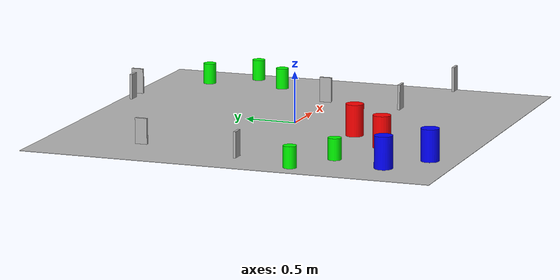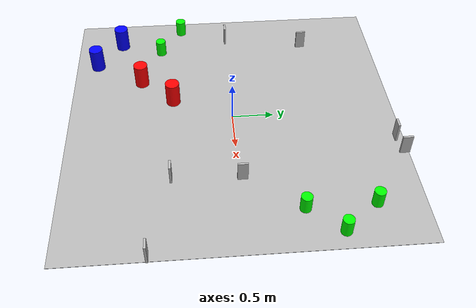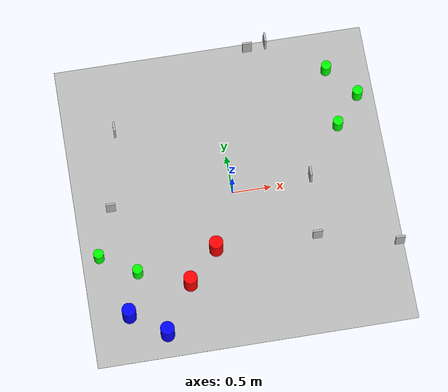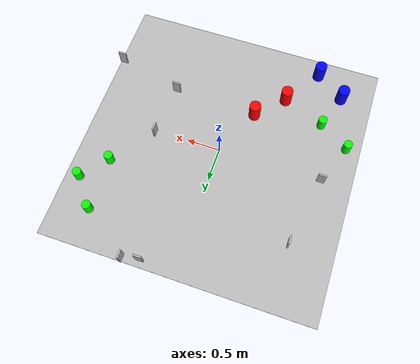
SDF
<sdf version="1.7">
 <world name="default">
  <model name="course">
   <static>1</static>
   <link name="course_link">
    <collision name="course_collision">
     <geometry><plane><normal>0 0 1</normal><size>4 4</size></plane></geometry>
     <surface><friction><ode><mu>100</mu><mu2>50</mu2></ode></friction></surface>
    </collision>
    <visual name="course_visual">
     <cast_shadows>0</cast_shadows>
     <geometry><plane><normal>0 0 1</normal><size>4 4</size></plane></geometry>
     <material>
      <script>
       <uri>model://course/materials/scripts</uri>
       <uri>model://course/materials/textures</uri>
       <name>course</name>
      </script>
     </material>
    </visual>
   </link>
   <pose>0 0 0 0 0 -3.14</pose>
  </model>
  <model name="traffic_parking">
   <static>1</static>
   <link name="box">
    <collision name="collision"><geometry><box><size>0.12 0.025 0.25</size></box></geometry></collision>
    <visual name="visual">
     <geometry><box><size>0.12 0.025 0.25</size></box></geometry>
     <material>
      <script>
       <uri>model://traffic_parking/materials/scripts</uri>
       <uri>model://traffic_parking/materials/textures</uri>
       <name>traffic_parking</name>
      </script>
     </material>
    </visual>
   </link>
   <pose>0.74 1.95 0.13 0 0 -1.57</pose>
  </model>
  <model name="traffic_tunnel">
   <pose>-1.544 0.006774 0.125 1e-06 -1e-06 0.000152</pose>
   <link name="box">
    <collision name="collision"><geometry><box><size>0.12 0.025 0.25</size></box></geometry></collision>
    <visual name="visual">
     <geometry><box><size>0.12 0.025 0.25</size></box></geometry>
     <material>
      <script>
       <uri>model://traffic_tunnel/materials/scripts</uri>
       <uri>model://traffic_tunnel/materials/textures</uri>
       <name>traffic_tunnel</name>
      </script>
     </material>
    </visual>
    <inertial>
     <inertia><ixx>1</ixx><ixy>0</ixy><ixz>0</ixz><iyy>1</iyy><iyz>0</iyz><izz>1</izz></inertia>
     <mass>1</mass>
    </inertial>
   </link>
  </model>
  <model name="traffic_stop">
   <static>1</static>
   <link name="box">
    <collision name="collision"><geometry><box><size>0.12 0.025 0.25</size></box></geometry></collision>
    <visual name="visual">
     <geometry><box><size>0.12 0.025 0.25</size></box></geometry>
     <material>
      <script>
       <uri>model://traffic_stop/materials/scripts</uri>
       <uri>model://traffic_stop/materials/textures</uri>
       <name>traffic_stop</name>
      </script>
     </material>
    </visual>
   </link>
   <pose>-1.35 1.04 0.125 0 0 -1.57</pose>
  </model>
  <model name="traffic_pl_left">
   <static>1</static>
   <link name="box">
    <collision name="collision"><geometry><box><size>0.12 0.025 0.25</size></box></geometry></collision>
    <visual name="visual">
     <geometry><box><size>0.12 0.025 0.25</size></box></geometry>
     <material>
      <script>
       <uri>model://traffic_pl_left/materials/scripts</uri>
       <uri>model://traffic_pl_left/materials/textures</uri>
       <name>traffic_pl_left</name>
      </script>
     </material>
    </visual>
   </link>
   <pose>0.5 1.9 0.13 0 -0 0</pose>
  </model>
  <model name="traffic_construction">
   <static>1</static>
   <link name="box">
    <collision name="collision"><geometry><box><size>0.12 0.025 0.25</size></box></geometry></collision>
    <visual name="visual">
     <geometry><box><size>0.12 0.025 0.25</size></box></geometry>
     <material>
      <script>
       <uri>model://traffic_construction/materials/scripts</uri>
       <uri>model://traffic_construction/materials/textures</uri>
       <name>traffic_construction</name>
      </script>
     </material>
    </visual>
   </link>
   <pose>1 0.04 0.125 0 0 -1.57</pose>
  </model>
  <model name="traffic_intersection">
   <static>1</static>
   <link name="box">
    <collision name="collision"><geometry><box><size>0.12 0.025 0.25</size></box></geometry></collision>
    <visual name="visual">
     <geometry><box><size>0.12 0.025 0.25</size></box></geometry>
     <material>
      <script>
       <uri>model://traffic_intersection/materials/scripts</uri>
       <uri>model://traffic_intersection/materials/textures</uri>
       <name>traffic_intersection</name>
      </script>
     </material>
    </visual>
   </link>
   <pose>1.95 -1 0.125 0 -0 0</pose>
  </model>
  <model name="traffic_noentry">
   <static>1</static>
   <link name="box">
    <collision name="collision"><geometry><box><size>0.12 0.025 0.25</size></box></geometry></collision>
    <visual name="visual">
     <geometry><box><size>0.12 0.025 0.25</size></box></geometry>
     <material>
      <script>
       <uri>model://traffic_noentry/materials/scripts</uri>
       <uri>model://traffic_noentry/materials/textures</uri>
       <name>traffic_noentry</name>
      </script>
     </material>
    </visual>
   </link>
   <pose>0.95 -0.758 0.125 0 -0 0</pose>
  </model>
  <model name="bouteille">
   <link name="link">
    <inertial>
     <mass>1</mass>
     <inertia><ixx>0.145833</ixx><ixy>0</ixy><ixz>0</ixz><iyy>0.145833</iyy><iyz>0</iyz><izz>0.125</izz></inertia>
    </inertial>
    <visual name="visual">
     <geometry><cylinder><radius>0.087</radius><length>0.31</length></cylinder></geometry>
     <material>
      <script><name>Gazebo/Grey</name><uri>file://media/materials/scripts/gazebo.material</uri></script>
      <shader type="pixel"><normal_map>__default__</normal_map></shader>
      <ambient>0 0 1 1</ambient>
      <diffuse>0 0 1 1</diffuse>
      <specular>0 0 0.9 1</specular>
      <emissive>0 0 0 1</emissive>
     </material>
    </visual>
    <collision name="collision">
     <geometry><cylinder><radius>0.087</radius><length>0.31</length></cylinder></geometry>
     <surface>
      <friction>
       <ode><mu>1</mu><mu2>1</mu2><fdir1>0 0 0</fdir1><slip1>0</slip1><slip2>0</slip2></ode>
       <torsional>
        <coefficient>1</coefficient>
        <patch_radius>0</patch_radius>
        <surface_radius>0</surface_radius>
        <use_patch_radius>1</use_patch_radius>
        <ode><slip>0</slip></ode>
       </torsional>
      </friction>
      <bounce><restitution_coefficient>0</restitution_coefficient><threshold>1e+06</threshold></bounce>
      <contact>
       <collide_without_contact>0</collide_without_contact>
       <collide_without_contact_bitmask>1</collide_without_contact_bitmask>
       <collide_bitmask>1</collide_bitmask>
       <ode>
        <soft_cfm>0</soft_cfm>
        <soft_erp>0.2</soft_erp>
        <kp>1e+13</kp>
        <kd>1</kd>
        <max_vel>0.01</max_vel>
        <min_depth>0</min_depth>
       </ode>
       <bullet>
        <split_impulse>1</split_impulse>
        <split_impulse_penetration_threshold>-0.01</split_impulse_penetration_threshold>
        <soft_cfm>0</soft_cfm>
        <soft_erp>0.2</soft_erp>
        <kp>1e+13</kp>
        <kd>1</kd>
       </bullet>
      </contact>
     </surface>
    </collision>
   </link>
   <static>0</static>
   <pose>-1.51691 -1.41262 0.154991 0 -0 7.4e-05</pose>
  </model>
  <model name="bouteille_clone">
   <link name="link">
    <inertial>
     <mass>1</mass>
     <inertia><ixx>0.145833</ixx><ixy>0</ixy><ixz>0</ixz><iyy>0.145833</iyy><iyz>0</iyz><izz>0.125</izz></inertia>
    </inertial>
    <visual name="visual">
     <geometry><cylinder><radius>0.087</radius><length>0.31</length></cylinder></geometry>
     <material>
      <script><name>Gazebo/Grey</name><uri>file://media/materials/scripts/gazebo.material</uri></script>
      <shader type="pixel"><normal_map>__default__</normal_map></shader>
      <ambient>0 0 1 1</ambient>
      <diffuse>0 0 1 1</diffuse>
      <specular>0 0 0.9 1</specular>
      <emissive>0 0 0 1</emissive>
     </material>
    </visual>
    <collision name="collision">
     <geometry><cylinder><radius>0.087</radius><length>0.31</length></cylinder></geometry>
     <surface>
      <friction>
       <ode><mu>1</mu><mu2>1</mu2><fdir1>0 0 0</fdir1><slip1>0</slip1><slip2>0</slip2></ode>
       <torsional>
        <coefficient>1</coefficient>
        <patch_radius>0</patch_radius>
        <surface_radius>0</surface_radius>
        <use_patch_radius>1</use_patch_radius>
        <ode><slip>0</slip></ode>
       </torsional>
      </friction>
      <bounce><restitution_coefficient>0</restitution_coefficient><threshold>1e+06</threshold></bounce>
      <contact>
       <collide_without_contact>0</collide_without_contact>
       <collide_without_contact_bitmask>1</collide_without_contact_bitmask>
       <collide_bitmask>1</collide_bitmask>
       <ode>
        <soft_cfm>0</soft_cfm>
        <soft_erp>0.2</soft_erp>
        <kp>1e+13</kp>
        <kd>1</kd>
        <max_vel>0.01</max_vel>
        <min_depth>0</min_depth>
       </ode>
       <bullet>
        <split_impulse>1</split_impulse>
        <split_impulse_penetration_threshold>-0.01</split_impulse_penetration_threshold>
        <soft_cfm>0</soft_cfm>
        <soft_erp>0.2</soft_erp>
        <kp>1e+13</kp>
        <kd>1</kd>
       </bullet>
      </contact>
     </surface>
    </collision>
   </link>
   <static>0</static>
   <pose>-1.08683 -1.71925 0.154991 0 0 -4.7e-05</pose>
  </model>
  <model name="petite_bouteille">
   <link name="link_0">
    <inertial>
     <mass>1</mass>
     <inertia><ixx>0.145833</ixx><ixy>0</ixy><ixz>0</ixz><iyy>0.145833</iyy><iyz>0</iyz><izz>0.125</izz></inertia>
    </inertial>
    <visual name="visual">
     <geometry><cylinder><radius>0.064</radius><length>0.209</length></cylinder></geometry>
     <material>
      <lighting>1</lighting>
      <script><uri>file://media/materials/scripts/gazebo.material</uri><name>Gazebo/Grey</name></script>
      <shader type="pixel"><normal_map>__default__</normal_map></shader>
      <ambient>0 1 0 1</ambient>
      <diffuse>0 1 0 1</diffuse>
      <specular>0 1 0 1</specular>
      <emissive>0 0.5 0 1</emissive>
     </material>
    </visual>
    <collision name="collision">
     <geometry><cylinder><radius>0.064</radius><length>0.209</length></cylinder></geometry>
     <surface>
      <friction>
       <ode><mu>1</mu><mu2>1</mu2><fdir1>0 0 0</fdir1><slip1>0</slip1><slip2>0</slip2></ode>
       <torsional>
        <coefficient>1</coefficient>
        <patch_radius>0</patch_radius>
        <surface_radius>0</surface_radius>
        <use_patch_radius>1</use_patch_radius>
        <ode><slip>0</slip></ode>
       </torsional>
      </friction>
      <bounce><restitution_coefficient>0</restitution_coefficient><threshold>1e+06</threshold></bounce>
      <contact>
       <collide_without_contact>0</collide_without_contact>
       <collide_without_contact_bitmask>1</collide_without_contact_bitmask>
       <collide_bitmask>1</collide_bitmask>
       <ode>
        <soft_cfm>0</soft_cfm>
        <soft_erp>0.2</soft_erp>
        <kp>1e+13</kp>
        <kd>1</kd>
        <max_vel>0.01</max_vel>
        <min_depth>0</min_depth>
       </ode>
       <bullet>
        <split_impulse>1</split_impulse>
        <split_impulse_penetration_threshold>-0.01</split_impulse_penetration_threshold>
        <soft_cfm>0</soft_cfm>
        <soft_erp>0.2</soft_erp>
        <kp>1e+13</kp>
        <kd>1</kd>
       </bullet>
      </contact>
     </surface>
    </collision>
   </link>
   <static>0</static>
   <pose>-1.33489 -0.878626 0.104492 0 -0 4.1e-05</pose>
  </model>
  <model name="petite_bouteille_clone">
   <link name="link_0">
    <inertial>
     <mass>1</mass>
     <inertia><ixx>0.145833</ixx><ixy>0</ixy><ixz>0</ixz><iyy>0.145833</iyy><iyz>0</iyz><izz>0.125</izz></inertia>
    </inertial>
    <visual name="visual">
     <geometry><cylinder><radius>0.064</radius><length>0.209</length></cylinder></geometry>
     <material>
      <lighting>1</lighting>
      <script><uri>file://media/materials/scripts/gazebo.material</uri><name>Gazebo/Grey</name></script>
      <shader type="pixel"><normal_map>__default__</normal_map></shader>
      <ambient>0 1 0 1</ambient>
      <diffuse>0 1 0 1</diffuse>
      <specular>0 1 0 1</specular>
      <emissive>0 0.5 0 1</emissive>
     </material>
    </visual>
    <collision name="collision">
     <geometry><cylinder><radius>0.064</radius><length>0.209</length></cylinder></geometry>
     <surface>
      <friction>
       <ode><mu>1</mu><mu2>1</mu2><fdir1>0 0 0</fdir1><slip1>0</slip1><slip2>0</slip2></ode>
       <torsional>
        <coefficient>1</coefficient>
        <patch_radius>0</patch_radius>
        <surface_radius>0</surface_radius>
        <use_patch_radius>1</use_patch_radius>
        <ode><slip>0</slip></ode>
       </torsional>
      </friction>
      <bounce><restitution_coefficient>0</restitution_coefficient><threshold>1e+06</threshold></bounce>
      <contact>
       <collide_without_contact>0</collide_without_contact>
       <collide_without_contact_bitmask>1</collide_without_contact_bitmask>
       <collide_bitmask>1</collide_bitmask>
       <ode>
        <soft_cfm>0</soft_cfm>
        <soft_erp>0.2</soft_erp>
        <kp>1e+13</kp>
        <kd>1</kd>
        <max_vel>0.01</max_vel>
        <min_depth>0</min_depth>
       </ode>
       <bullet>
        <split_impulse>1</split_impulse>
        <split_impulse_penetration_threshold>-0.01</split_impulse_penetration_threshold>
        <soft_cfm>0</soft_cfm>
        <soft_erp>0.2</soft_erp>
        <kp>1e+13</kp>
        <kd>1</kd>
       </bullet>
      </contact>
     </surface>
    </collision>
   </link>
   <static>0</static>
   <pose>-1.78153 -0.602262 0.104499 -0 -0 -9.9e-05</pose>
  </model>
  <model name="bouteille_clone_clone_clone_clone">
   <link name="link">
    <inertial>
     <mass>1</mass>
     <inertia><ixx>0.145833</ixx><ixy>0</ixy><ixz>0</ixz><iyy>0.145833</iyy><iyz>0</iyz><izz>0.125</izz></inertia>
    </inertial>
    <visual name="visual">
     <geometry><cylinder><radius>0.087</radius><length>0.31</length></cylinder></geometry>
     <material>
      <script><name>Gazebo/Grey</name><uri>file://media/materials/scripts/gazebo.material</uri></script>
      <shader type="pixel"><normal_map>__default__</normal_map></shader>
      <ambient>1 0 0 1</ambient>
      <diffuse>1 0 0 1</diffuse>
      <specular>1 0 0.9 1</specular>
      <emissive>0 0 0 1</emissive>
     </material>
    </visual>
    <collision name="collision">
     <geometry><cylinder><radius>0.087</radius><length>0.31</length></cylinder></geometry>
     <surface>
      <friction>
       <ode><mu>1</mu><mu2>1</mu2><fdir1>0 0 0</fdir1><slip1>0</slip1><slip2>0</slip2></ode>
       <torsional>
        <coefficient>1</coefficient>
        <patch_radius>0</patch_radius>
        <surface_radius>0</surface_radius>
        <use_patch_radius>1</use_patch_radius>
        <ode><slip>0</slip></ode>
       </torsional>
      </friction>
      <bounce><restitution_coefficient>0</restitution_coefficient><threshold>1e+06</threshold></bounce>
      <contact>
       <collide_without_contact>0</collide_without_contact>
       <collide_without_contact_bitmask>1</collide_without_contact_bitmask>
       <collide_bitmask>1</collide_bitmask>
       <ode>
        <soft_cfm>0</soft_cfm>
        <soft_erp>0.2</soft_erp>
        <kp>1e+13</kp>
        <kd>1</kd>
        <max_vel>0.01</max_vel>
        <min_depth>0</min_depth>
       </ode>
       <bullet>
        <split_impulse>1</split_impulse>
        <split_impulse_penetration_threshold>-0.01</split_impulse_penetration_threshold>
        <soft_cfm>0</soft_cfm>
        <soft_erp>0.2</soft_erp>
        <kp>1e+13</kp>
        <kd>1</kd>
       </bullet>
      </contact>
     </surface>
    </collision>
   </link>
   <static>0</static>
   <pose>-0.708912 -1.12367 0.154991 0 -0 0</pose>
  </model>
  <model name="bouteille_clone_clone_clone_clone_clone">
   <link name="link">
    <inertial>
     <mass>1</mass>
     <inertia><ixx>0.145833</ixx><ixy>0</ixy><ixz>0</ixz><iyy>0.145833</iyy><iyz>0</iyz><izz>0.125</izz></inertia>
    </inertial>
    <visual name="visual">
     <geometry><cylinder><radius>0.087</radius><length>0.31</length></cylinder></geometry>
     <material>
      <script><name>Gazebo/Grey</name><uri>file://media/materials/scripts/gazebo.material</uri></script>
      <shader type="pixel"><normal_map>__default__</normal_map></shader>
      <ambient>1 0 0 1</ambient>
      <diffuse>1 0 0 1</diffuse>
      <specular>1 0 0.9 1</specular>
      <emissive>0 0 0 1</emissive>
     </material>
    </visual>
    <collision name="collision">
     <geometry><cylinder><radius>0.087</radius><length>0.31</length></cylinder></geometry>
     <surface>
      <friction>
       <ode><mu>1</mu><mu2>1</mu2><fdir1>0 0 0</fdir1><slip1>0</slip1><slip2>0</slip2></ode>
       <torsional>
        <coefficient>1</coefficient>
        <patch_radius>0</patch_radius>
        <surface_radius>0</surface_radius>
        <use_patch_radius>1</use_patch_radius>
        <ode><slip>0</slip></ode>
       </torsional>
      </friction>
      <bounce><restitution_coefficient>0</restitution_coefficient><threshold>1e+06</threshold></bounce>
      <contact>
       <collide_without_contact>0</collide_without_contact>
       <collide_without_contact_bitmask>1</collide_without_contact_bitmask>
       <collide_bitmask>1</collide_bitmask>
       <ode>
        <soft_cfm>0</soft_cfm>
        <soft_erp>0.2</soft_erp>
        <kp>1e+13</kp>
        <kd>1</kd>
        <max_vel>0.01</max_vel>
        <min_depth>0</min_depth>
       </ode>
       <bullet>
        <split_impulse>1</split_impulse>
        <split_impulse_penetration_threshold>-0.01</split_impulse_penetration_threshold>
        <soft_cfm>0</soft_cfm>
        <soft_erp>0.2</soft_erp>
        <kp>1e+13</kp>
        <kd>1</kd>
       </bullet>
      </contact>
     </surface>
    </collision>
   </link>
   <static>0</static>
   <pose>-0.324092 -0.72213 0.154991 0 -0 0</pose>
  </model>
  <model name="petite_bouteille_clone_0">
   <link name="link_0">
    <inertial>
     <mass>1</mass>
     <inertia><ixx>0.145833</ixx><ixy>0</ixy><ixz>0</ixz><iyy>0.145833</iyy><iyz>0</iyz><izz>0.125</izz></inertia>
    </inertial>
    <visual name="visual">
     <geometry><cylinder><radius>0.064</radius><length>0.209</length></cylinder></geometry>
     <material>
      <lighting>1</lighting>
      <script><uri>file://media/materials/scripts/gazebo.material</uri><name>Gazebo/Grey</name></script>
      <shader type="pixel"><normal_map>__default__</normal_map></shader>
      <ambient>0 1 0 1</ambient>
      <diffuse>0 1 0 1</diffuse>
      <specular>0 1 0 1</specular>
      <emissive>0 0.5 0 1</emissive>
     </material>
    </visual>
    <collision name="collision">
     <geometry><cylinder><radius>0.064</radius><length>0.209</length></cylinder></geometry>
     <surface>
      <friction>
       <ode><mu>1</mu><mu2>1</mu2><fdir1>0 0 0</fdir1><slip1>0</slip1><slip2>0</slip2></ode>
       <torsional>
        <coefficient>1</coefficient>
        <patch_radius>0</patch_radius>
        <surface_radius>0</surface_radius>
        <use_patch_radius>1</use_patch_radius>
        <ode><slip>0</slip></ode>
       </torsional>
      </friction>
      <bounce><restitution_coefficient>0</restitution_coefficient><threshold>1e+06</threshold></bounce>
      <contact>
       <collide_without_contact>0</collide_without_contact>
       <collide_without_contact_bitmask>1</collide_without_contact_bitmask>
       <collide_bitmask>1</collide_bitmask>
       <ode>
        <soft_cfm>0</soft_cfm>
        <soft_erp>0.2</soft_erp>
        <kp>1e+13</kp>
        <kd>1</kd>
        <max_vel>0.01</max_vel>
        <min_depth>0</min_depth>
       </ode>
       <bullet>
        <split_impulse>1</split_impulse>
        <split_impulse_penetration_threshold>-0.01</split_impulse_penetration_threshold>
        <soft_cfm>0</soft_cfm>
        <soft_erp>0.2</soft_erp>
        <kp>1e+13</kp>
        <kd>1</kd>
       </bullet>
      </contact>
     </surface>
    </collision>
   </link>
   <static>0</static>
   <pose>1.46761 0.671674 0.1045 0 -0 4.1e-05</pose>
  </model>
  <model name="petite_bouteille_clone_1">
   <link name="link_0">
    <inertial>
     <mass>1</mass>
     <inertia><ixx>0.145833</ixx><ixy>0</ixy><ixz>0</ixz><iyy>0.145833</iyy><iyz>0</iyz><izz>0.125</izz></inertia>
    </inertial>
    <visual name="visual">
     <geometry><cylinder><radius>0.064</radius><length>0.209</length></cylinder></geometry>
     <material>
      <lighting>1</lighting>
      <script><uri>file://media/materials/scripts/gazebo.material</uri><name>Gazebo/Grey</name></script>
      <shader type="pixel"><normal_map>__default__</normal_map></shader>
      <ambient>0 1 0 1</ambient>
      <diffuse>0 1 0 1</diffuse>
      <specular>0 1 0 1</specular>
      <emissive>0 0.5 0 1</emissive>
     </material>
    </visual>
    <collision name="collision">
     <geometry><cylinder><radius>0.064</radius><length>0.209</length></cylinder></geometry>
     <surface>
      <friction>
       <ode><mu>1</mu><mu2>1</mu2><fdir1>0 0 0</fdir1><slip1>0</slip1><slip2>0</slip2></ode>
       <torsional>
        <coefficient>1</coefficient>
        <patch_radius>0</patch_radius>
        <surface_radius>0</surface_radius>
        <use_patch_radius>1</use_patch_radius>
        <ode><slip>0</slip></ode>
       </torsional>
      </friction>
      <bounce><restitution_coefficient>0</restitution_coefficient><threshold>1e+06</threshold></bounce>
      <contact>
       <collide_without_contact>0</collide_without_contact>
       <collide_without_contact_bitmask>1</collide_without_contact_bitmask>
       <collide_bitmask>1</collide_bitmask>
       <ode>
        <soft_cfm>0</soft_cfm>
        <soft_erp>0.2</soft_erp>
        <kp>1e+13</kp>
        <kd>1</kd>
        <max_vel>0.01</max_vel>
        <min_depth>0</min_depth>
       </ode>
       <bullet>
        <split_impulse>1</split_impulse>
        <split_impulse_penetration_threshold>-0.01</split_impulse_penetration_threshold>
        <soft_cfm>0</soft_cfm>
        <soft_erp>0.2</soft_erp>
        <kp>1e+13</kp>
        <kd>1</kd>
       </bullet>
      </contact>
     </surface>
    </collision>
   </link>
   <static>0</static>
   <pose>1.78849 1.04609 0.1045 0 -0 4.1e-05</pose>
  </model>
  <model name="petite_bouteille_clone_2">
   <link name="link_0">
    <inertial>
     <mass>1</mass>
     <inertia><ixx>0.145833</ixx><ixy>0</ixy><ixz>0</ixz><iyy>0.145833</iyy><iyz>0</iyz><izz>0.125</izz></inertia>
    </inertial>
    <visual name="visual">
     <geometry><cylinder><radius>0.064</radius><length>0.209</length></cylinder></geometry>
     <material>
      <lighting>1</lighting>
      <script><uri>file://media/materials/scripts/gazebo.material</uri><name>Gazebo/Grey</name></script>
      <shader type="pixel"><normal_map>__default__</normal_map></shader>
      <ambient>0 1 0 1</ambient>
      <diffuse>0 1 0 1</diffuse>
      <specular>0 1 0 1</specular>
      <emissive>0 0.5 0 1</emissive>
     </material>
    </visual>
    <collision name="collision">
     <geometry><cylinder><radius>0.064</radius><length>0.209</length></cylinder></geometry>
     <surface>
      <friction>
       <ode><mu>1</mu><mu2>1</mu2><fdir1>0 0 0</fdir1><slip1>0</slip1><slip2>0</slip2></ode>
       <torsional>
        <coefficient>1</coefficient>
        <patch_radius>0</patch_radius>
        <surface_radius>0</surface_radius>
        <use_patch_radius>1</use_patch_radius>
        <ode><slip>0</slip></ode>
       </torsional>
      </friction>
      <bounce><restitution_coefficient>0</restitution_coefficient><threshold>1e+06</threshold></bounce>
      <contact>
       <collide_without_contact>0</collide_without_contact>
       <collide_without_contact_bitmask>1</collide_without_contact_bitmask>
       <collide_bitmask>1</collide_bitmask>
       <ode>
        <soft_cfm>0</soft_cfm>
        <soft_erp>0.2</soft_erp>
        <kp>1e+13</kp>
        <kd>1</kd>
        <max_vel>0.01</max_vel>
        <min_depth>0</min_depth>
       </ode>
       <bullet>
        <split_impulse>1</split_impulse>
        <split_impulse_penetration_threshold>-0.01</split_impulse_penetration_threshold>
        <soft_cfm>0</soft_cfm>
        <soft_erp>0.2</soft_erp>
        <kp>1e+13</kp>
        <kd>1</kd>
       </bullet>
      </contact>
     </surface>
    </collision>
   </link>
   <static>0</static>
   <pose>1.45354 1.45376 0.1045 0 -0 4.1e-05</pose>
  </model>
 </world>
</sdf>
